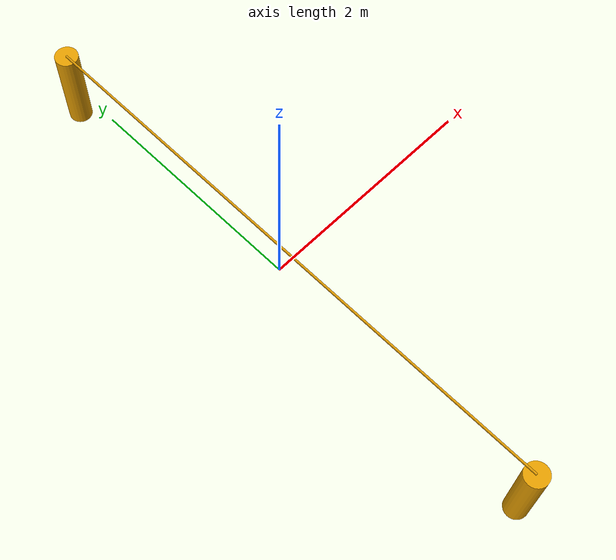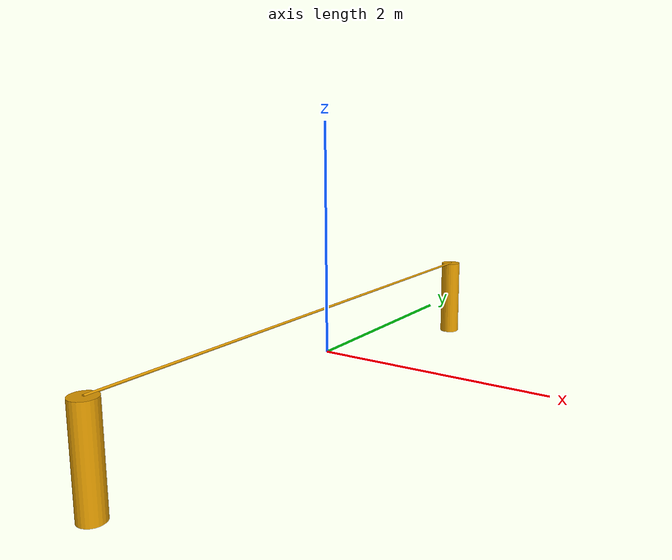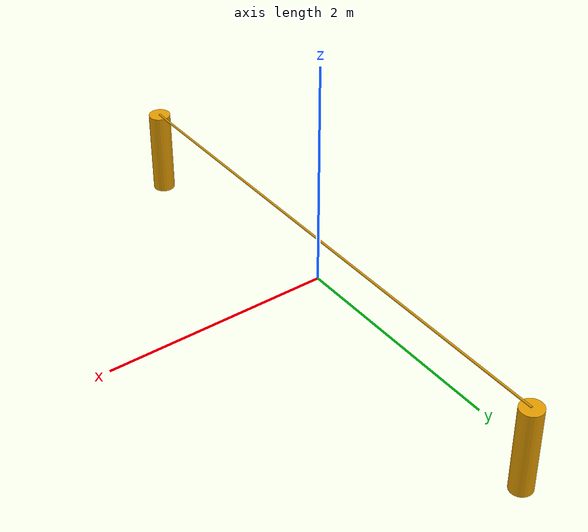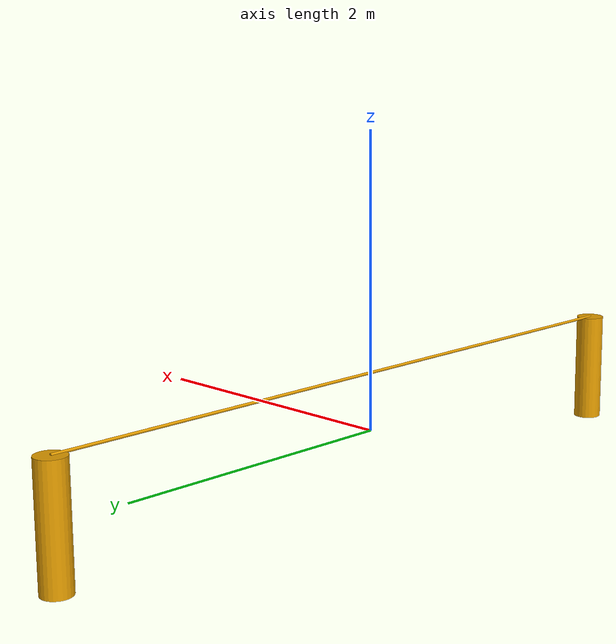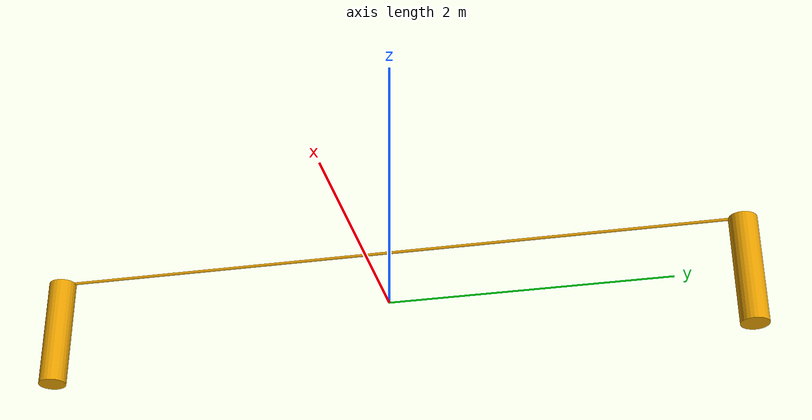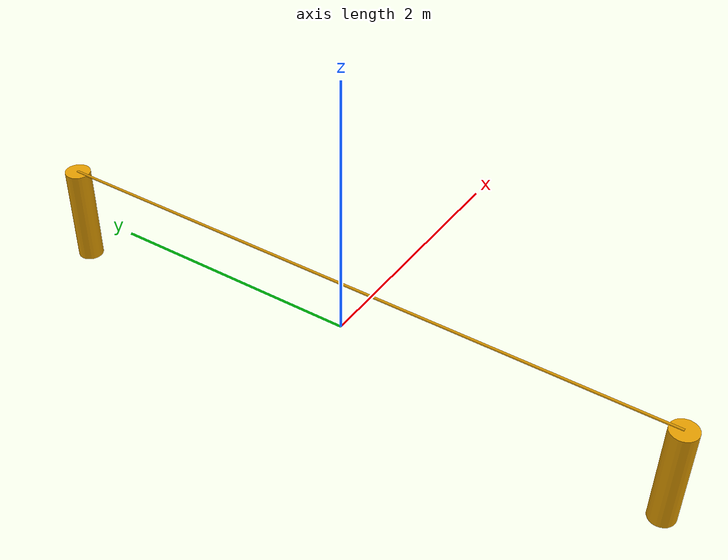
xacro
<?xml version="1.0"?>
<robot xmlns:sensor="http://playerstage.sourceforge.net/gazebo/xmlschema/#sensor"
       xmlns:controller="http://playerstage.sourceforge.net/gazebo/xmlschema/#controller"
       xmlns:interface="http://playerstage.sourceforge.net/gazebo/xmlschema/#interface"
       xmlns:xacro="http://playerstage.sourceforge.net/gazebo/xmlschema/#interface"
       name="powerline">
        <include filename="$(find cob_description)/urdf/common.xacro" />

  <link name="power_line">
    <visual>
      <origin xyz="0 -2.5 0" rpy="0 0 0" />
      <geometry>
        <cylinder length="0.8" radius="0.1"/>
      </geometry>
    </visual>
    <collision>
        <origin xyz="0 -2.5 0" rpy="0 0 0" />
      <geometry>
        <cylinder length="0.8" radius="0.1"/>
      </geometry>
    </collision>
    <inertial>
            <mass value="1" />
            <origin xyz="0 -2.5 0" rpy="0 0 0" />
            <inertia ixx="0.004" ixy="0.001" ixz="0" iyy="0.006" iyz="0" izz="0.007" />
    </inertial>
    <visual>
            <origin xyz="0 0 0.4" rpy="1.5708 0 0" />
      <geometry>
        <cylinder length="5" radius="0.01"/>
      </geometry>
    </visual>
    <collision>
        <origin xyz="0 0 0.4" rpy="1.5708 0 0" />
      <geometry>
        <cylinder length="5" radius="0.01"/>
      </geometry>
    </collision>
    <inertial>
            <mass value="20" />
            <origin xyz="0 0 0.4" rpy="1.5708 0 0" />
            <inertia ixx="0.004" ixy="0.001" ixz="0" iyy="0.006" iyz="0" izz="0.007" />
    </inertial>
    <visual>
            <origin xyz="0 2.5 0" rpy="0 0 0" />
      <geometry>
        <cylinder length="0.8" radius="0.1"/>
      </geometry>
    </visual>
    <collision>
        <origin xyz="0 2.5 0" rpy="0 0 0" />
      <geometry>
        <cylinder length="0.8" radius="0.1"/>
      </geometry>
    </collision>
    <inertial>
            <mass value="20" />
            <origin xyz="0 2.5 0" rpy="0 0 0" />
            <inertia ixx="0.004" ixy="0.001" ixz="0" iyy="0.006" iyz="0" izz="0.007" />
    </inertial>

  </link>

</robot>
